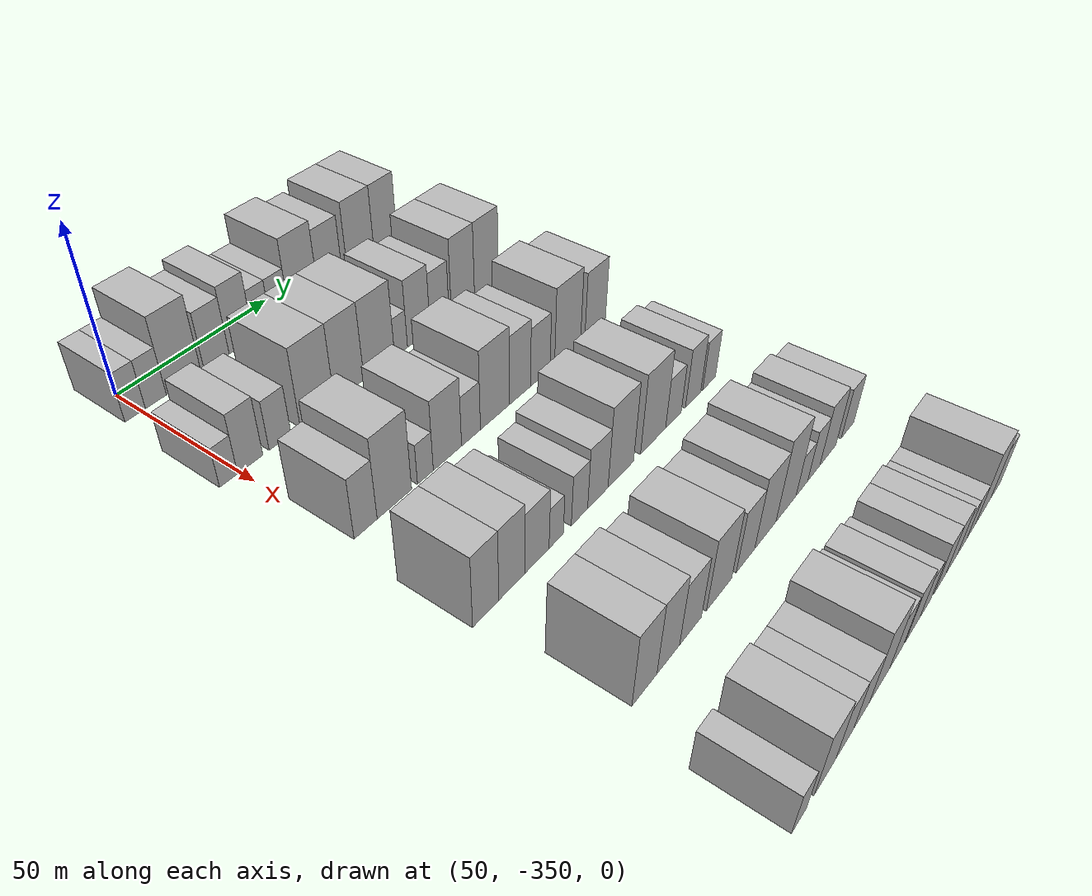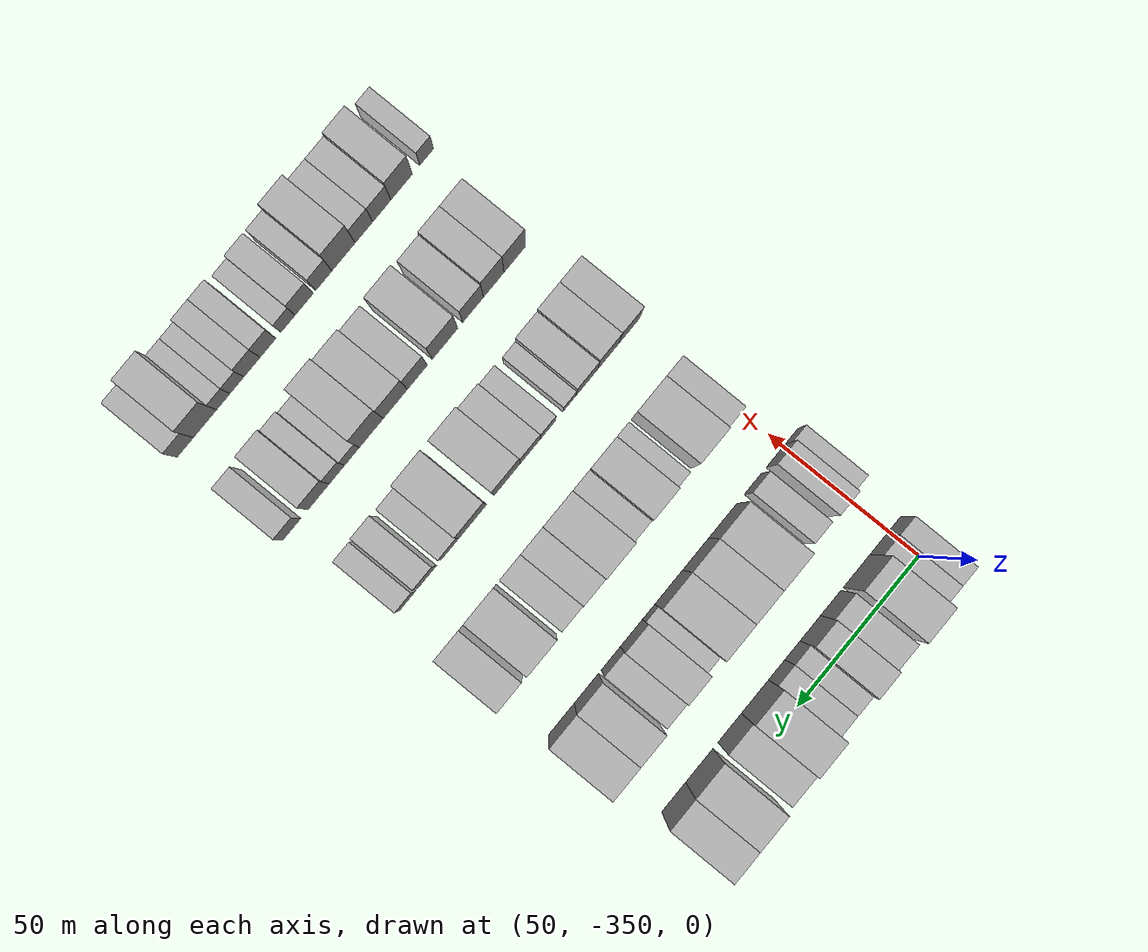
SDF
<sdf version="1.6">
 <world name="default">
  <model name="building_25">
   <static>1</static>
   <pose>50.0000 -352.0526 0 0.000000 0.000000 0.000000</pose>
   <link name="link">
    <pose>0 0 7.50 0 0 0</pose>
    <collision name="collision"><geometry><box><size>20.0000 6.1165 15.0000</size></box></geometry></collision>
    <visual name="visual">
     <cast_shadows>0</cast_shadows>
     <geometry><box><size>20.0000 6.1165 15.0000</size></box></geometry>
     <material>
      <script>
       <uri>model://HANNAS_wall/materials/scripts</uri>
       <uri>model://HANNAS_wall/materials/textures</uri>
       <name>vrc/HANNAS_wall</name>
      </script>
     </material>
    </visual>
   </link>
  </model>
  <model name="building_26">
   <static>1</static>
   <pose>50.0000 -345.7716 0 0.000000 0.000000 0.000000</pose>
   <link name="link">
    <pose>0 0 7.50 0 0 0</pose>
    <collision name="collision"><geometry><box><size>20.0000 6.4454 15.0000</size></box></geometry></collision>
    <visual name="visual">
     <cast_shadows>0</cast_shadows>
     <geometry><box><size>20.0000 6.4454 15.0000</size></box></geometry>
     <material>
      <script>
       <uri>model://HANNAS_wall/materials/scripts</uri>
       <uri>model://HANNAS_wall/materials/textures</uri>
       <name>vrc/HANNAS_wall</name>
      </script>
     </material>
    </visual>
   </link>
  </model>
  <model name="building_27">
   <static>1</static>
   <pose>50.0000 -337.0065 0 0.000000 0.000000 0.000000</pose>
   <link name="link">
    <pose>0 0 12.00 0 0 0</pose>
    <collision name="collision"><geometry><box><size>20.0000 11.0848 24.0000</size></box></geometry></collision>
    <visual name="visual">
     <cast_shadows>0</cast_shadows>
     <geometry><box><size>20.0000 11.0848 24.0000</size></box></geometry>
     <material>
      <script>
       <uri>model://HANNAS_wall/materials/scripts</uri>
       <uri>model://HANNAS_wall/materials/textures</uri>
       <name>vrc/HANNAS_wall</name>
      </script>
     </material>
    </visual>
   </link>
  </model>
  <model name="building_28">
   <static>1</static>
   <pose>50.0000 -326.2765 0 0.000000 0.000000 0.000000</pose>
   <link name="link">
    <pose>0 0 9.00 0 0 0</pose>
    <collision name="collision"><geometry><box><size>20.0000 8.3753 18.0000</size></box></geometry></collision>
    <visual name="visual">
     <cast_shadows>0</cast_shadows>
     <geometry><box><size>20.0000 8.3753 18.0000</size></box></geometry>
     <material>
      <script>
       <uri>model://HANNAS_wall/materials/scripts</uri>
       <uri>model://HANNAS_wall/materials/textures</uri>
       <name>vrc/HANNAS_wall</name>
      </script>
     </material>
    </visual>
   </link>
  </model>
  <model name="building_29">
   <static>1</static>
   <pose>50.0000 -317.8572 0 0.000000 0.000000 0.000000</pose>
   <link name="link">
    <pose>0 0 10.50 0 0 0</pose>
    <collision name="collision"><geometry><box><size>20.0000 8.4634 21.0000</size></box></geometry></collision>
    <visual name="visual">
     <cast_shadows>0</cast_shadows>
     <geometry><box><size>20.0000 8.4634 21.0000</size></box></geometry>
     <material>
      <script>
       <uri>model://HANNAS_wall/materials/scripts</uri>
       <uri>model://HANNAS_wall/materials/textures</uri>
       <name>vrc/HANNAS_wall</name>
      </script>
     </material>
    </visual>
   </link>
  </model>
  <model name="building_30">
   <static>1</static>
   <pose>50.0000 -310.4943 0 0.000000 0.000000 0.000000</pose>
   <link name="link">
    <pose>0 0 7.50 0 0 0</pose>
    <collision name="collision"><geometry><box><size>20.0000 6.2623 15.0000</size></box></geometry></collision>
    <visual name="visual">
     <cast_shadows>0</cast_shadows>
     <geometry><box><size>20.0000 6.2623 15.0000</size></box></geometry>
     <material>
      <script>
       <uri>model://HANNAS_wall/materials/scripts</uri>
       <uri>model://HANNAS_wall/materials/textures</uri>
       <name>vrc/HANNAS_wall</name>
      </script>
     </material>
    </visual>
   </link>
  </model>
  <model name="building_31">
   <static>1</static>
   <pose>50.0000 -304.0027 0 0.000000 0.000000 0.000000</pose>
   <link name="link">
    <pose>0 0 7.50 0 0 0</pose>
    <collision name="collision"><geometry><box><size>20.0000 6.7210 15.0000</size></box></geometry></collision>
    <visual name="visual">
     <cast_shadows>0</cast_shadows>
     <geometry><box><size>20.0000 6.7210 15.0000</size></box></geometry>
     <material>
      <script>
       <uri>model://HANNAS_wall/materials/scripts</uri>
       <uri>model://HANNAS_wall/materials/textures</uri>
       <name>vrc/HANNAS_wall</name>
      </script>
     </material>
    </visual>
   </link>
  </model>
  <model name="building_32">
   <static>1</static>
   <pose>50.0000 -295.0902 0 0.000000 0.000000 0.000000</pose>
   <link name="link">
    <pose>0 0 12.00 0 0 0</pose>
    <collision name="collision"><geometry><box><size>20.0000 11.1041 24.0000</size></box></geometry></collision>
    <visual name="visual">
     <cast_shadows>0</cast_shadows>
     <geometry><box><size>20.0000 11.1041 24.0000</size></box></geometry>
     <material>
      <script>
       <uri>model://HANNAS_wall/materials/scripts</uri>
       <uri>model://HANNAS_wall/materials/textures</uri>
       <name>vrc/HANNAS_wall</name>
      </script>
     </material>
    </visual>
   </link>
  </model>
  <model name="building_33">
   <static>1</static>
   <pose>50.0000 -284.7177 0 0.000000 0.000000 0.000000</pose>
   <link name="link">
    <pose>0 0 10.50 0 0 0</pose>
    <collision name="collision"><geometry><box><size>20.0000 9.6409 21.0000</size></box></geometry></collision>
    <visual name="visual">
     <cast_shadows>0</cast_shadows>
     <geometry><box><size>20.0000 9.6409 21.0000</size></box></geometry>
     <material>
      <script>
       <uri>model://HANNAS_wall/materials/scripts</uri>
       <uri>model://HANNAS_wall/materials/textures</uri>
       <name>vrc/HANNAS_wall</name>
      </script>
     </material>
    </visual>
   </link>
  </model>
  <model name="building_34">
   <static>1</static>
   <pose>50.0000 -272.3143 0 0.000000 0.000000 0.000000</pose>
   <link name="link">
    <pose>0 0 12.00 0 0 0</pose>
    <collision name="collision"><geometry><box><size>20.0000 11.1660 24.0000</size></box></geometry></collision>
    <visual name="visual">
     <cast_shadows>0</cast_shadows>
     <geometry><box><size>20.0000 11.1660 24.0000</size></box></geometry>
     <material>
      <script>
       <uri>model://HANNAS_wall/materials/scripts</uri>
       <uri>model://HANNAS_wall/materials/textures</uri>
       <name>vrc/HANNAS_wall</name>
      </script>
     </material>
    </visual>
   </link>
  </model>
  <model name="building_35">
   <static>1</static>
   <pose>50.0000 -261.8260 0 0.000000 0.000000 0.000000</pose>
   <link name="link">
    <pose>0 0 12.00 0 0 0</pose>
    <collision name="collision"><geometry><box><size>20.0000 9.8106 24.0000</size></box></geometry></collision>
    <visual name="visual">
     <cast_shadows>0</cast_shadows>
     <geometry><box><size>20.0000 9.8106 24.0000</size></box></geometry>
     <material>
      <script>
       <uri>model://HANNAS_wall/materials/scripts</uri>
       <uri>model://HANNAS_wall/materials/textures</uri>
       <name>vrc/HANNAS_wall</name>
      </script>
     </material>
    </visual>
   </link>
  </model>
  <model name="building_152">
   <static>1</static>
   <pose>85.0000 -353.3975 0 0.000000 0.000000 0.000000</pose>
   <link name="link">
    <pose>0 0 6.00 0 0 0</pose>
    <collision name="collision"><geometry><box><size>20.0000 5.4211 12.0000</size></box></geometry></collision>
    <visual name="visual">
     <cast_shadows>0</cast_shadows>
     <geometry><box><size>20.0000 5.4211 12.0000</size></box></geometry>
     <material>
      <script>
       <uri>model://HANNAS_wall/materials/scripts</uri>
       <uri>model://HANNAS_wall/materials/textures</uri>
       <name>vrc/HANNAS_wall</name>
      </script>
     </material>
    </visual>
   </link>
  </model>
  <model name="building_153">
   <static>1</static>
   <pose>85.0000 -346.8022 0 0.000000 0.000000 0.000000</pose>
   <link name="link">
    <pose>0 0 9.00 0 0 0</pose>
    <collision name="collision"><geometry><box><size>20.0000 7.7694 18.0000</size></box></geometry></collision>
    <visual name="visual">
     <cast_shadows>0</cast_shadows>
     <geometry><box><size>20.0000 7.7694 18.0000</size></box></geometry>
     <material>
      <script>
       <uri>model://HANNAS_wall/materials/scripts</uri>
       <uri>model://HANNAS_wall/materials/textures</uri>
       <name>vrc/HANNAS_wall</name>
      </script>
     </material>
    </visual>
   </link>
  </model>
  <model name="building_154">
   <static>1</static>
   <pose>85.0000 -337.3954 0 0.000000 0.000000 0.000000</pose>
   <link name="link">
    <pose>0 0 7.50 0 0 0</pose>
    <collision name="collision"><geometry><box><size>20.0000 7.0443 15.0000</size></box></geometry></collision>
    <visual name="visual">
     <cast_shadows>0</cast_shadows>
     <geometry><box><size>20.0000 7.0443 15.0000</size></box></geometry>
     <material>
      <script>
       <uri>model://HANNAS_wall/materials/scripts</uri>
       <uri>model://HANNAS_wall/materials/textures</uri>
       <name>vrc/HANNAS_wall</name>
      </script>
     </material>
    </visual>
   </link>
  </model>
  <model name="building_155">
   <static>1</static>
   <pose>85.0000 -325.0243 0 0.000000 0.000000 0.000000</pose>
   <link name="link">
    <pose>0 0 12.00 0 0 0</pose>
    <collision name="collision"><geometry><box><size>20.0000 11.6979 24.0000</size></box></geometry></collision>
    <visual name="visual">
     <cast_shadows>0</cast_shadows>
     <geometry><box><size>20.0000 11.6979 24.0000</size></box></geometry>
     <material>
      <script>
       <uri>model://HANNAS_wall/materials/scripts</uri>
       <uri>model://HANNAS_wall/materials/textures</uri>
       <name>vrc/HANNAS_wall</name>
      </script>
     </material>
    </visual>
   </link>
  </model>
  <model name="building_156">
   <static>1</static>
   <pose>85.0000 -313.8927 0 0.000000 0.000000 0.000000</pose>
   <link name="link">
    <pose>0 0 12.00 0 0 0</pose>
    <collision name="collision"><geometry><box><size>20.0000 10.5653 24.0000</size></box></geometry></collision>
    <visual name="visual">
     <cast_shadows>0</cast_shadows>
     <geometry><box><size>20.0000 10.5653 24.0000</size></box></geometry>
     <material>
      <script>
       <uri>model://HANNAS_wall/materials/scripts</uri>
       <uri>model://HANNAS_wall/materials/textures</uri>
       <name>vrc/HANNAS_wall</name>
      </script>
     </material>
    </visual>
   </link>
  </model>
  <model name="building_157">
   <static>1</static>
   <pose>85.0000 -302.8517 0 0.000000 0.000000 0.000000</pose>
   <link name="link">
    <pose>0 0 12.00 0 0 0</pose>
    <collision name="collision"><geometry><box><size>20.0000 11.5167 24.0000</size></box></geometry></collision>
    <visual name="visual">
     <cast_shadows>0</cast_shadows>
     <geometry><box><size>20.0000 11.5167 24.0000</size></box></geometry>
     <material>
      <script>
       <uri>model://HANNAS_wall/materials/scripts</uri>
       <uri>model://HANNAS_wall/materials/textures</uri>
       <name>vrc/HANNAS_wall</name>
      </script>
     </material>
    </visual>
   </link>
  </model>
  <model name="building_158">
   <static>1</static>
   <pose>85.0000 -294.6057 0 0.000000 0.000000 0.000000</pose>
   <link name="link">
    <pose>0 0 6.00 0 0 0</pose>
    <collision name="collision"><geometry><box><size>20.0000 4.9754 12.0000</size></box></geometry></collision>
    <visual name="visual">
     <cast_shadows>0</cast_shadows>
     <geometry><box><size>20.0000 4.9754 12.0000</size></box></geometry>
     <material>
      <script>
       <uri>model://HANNAS_wall/materials/scripts</uri>
       <uri>model://HANNAS_wall/materials/textures</uri>
       <name>vrc/HANNAS_wall</name>
      </script>
     </material>
    </visual>
   </link>
  </model>
  <model name="building_159">
   <static>1</static>
   <pose>85.0000 -287.5764 0 0.000000 0.000000 0.000000</pose>
   <link name="link">
    <pose>0 0 10.50 0 0 0</pose>
    <collision name="collision"><geometry><box><size>20.0000 9.0832 21.0000</size></box></geometry></collision>
    <visual name="visual">
     <cast_shadows>0</cast_shadows>
     <geometry><box><size>20.0000 9.0832 21.0000</size></box></geometry>
     <material>
      <script>
       <uri>model://HANNAS_wall/materials/scripts</uri>
       <uri>model://HANNAS_wall/materials/textures</uri>
       <name>vrc/HANNAS_wall</name>
      </script>
     </material>
    </visual>
   </link>
  </model>
  <model name="building_160">
   <static>1</static>
   <pose>85.0000 -279.1098 0 0.000000 0.000000 0.000000</pose>
   <link name="link">
    <pose>0 0 9.00 0 0 0</pose>
    <collision name="collision"><geometry><box><size>20.0000 7.8499 18.0000</size></box></geometry></collision>
    <visual name="visual">
     <cast_shadows>0</cast_shadows>
     <geometry><box><size>20.0000 7.8499 18.0000</size></box></geometry>
     <material>
      <script>
       <uri>model://HANNAS_wall/materials/scripts</uri>
       <uri>model://HANNAS_wall/materials/textures</uri>
       <name>vrc/HANNAS_wall</name>
      </script>
     </material>
    </visual>
   </link>
  </model>
  <model name="building_161">
   <static>1</static>
   <pose>85.0000 -269.1996 0 0.000000 0.000000 0.000000</pose>
   <link name="link">
    <pose>0 0 12.00 0 0 0</pose>
    <collision name="collision"><geometry><box><size>20.0000 9.9705 24.0000</size></box></geometry></collision>
    <visual name="visual">
     <cast_shadows>0</cast_shadows>
     <geometry><box><size>20.0000 9.9705 24.0000</size></box></geometry>
     <material>
      <script>
       <uri>model://HANNAS_wall/materials/scripts</uri>
       <uri>model://HANNAS_wall/materials/textures</uri>
       <name>vrc/HANNAS_wall</name>
      </script>
     </material>
    </visual>
   </link>
  </model>
  <model name="building_162">
   <static>1</static>
   <pose>85.0000 -258.9058 0 0.000000 0.000000 0.000000</pose>
   <link name="link">
    <pose>0 0 12.00 0 0 0</pose>
    <collision name="collision"><geometry><box><size>20.0000 10.6171 24.0000</size></box></geometry></collision>
    <visual name="visual">
     <cast_shadows>0</cast_shadows>
     <geometry><box><size>20.0000 10.6171 24.0000</size></box></geometry>
     <material>
      <script>
       <uri>model://HANNAS_wall/materials/scripts</uri>
       <uri>model://HANNAS_wall/materials/textures</uri>
       <name>vrc/HANNAS_wall</name>
      </script>
     </material>
    </visual>
   </link>
  </model>
  <model name="building_280">
   <static>1</static>
   <pose>120.0000 -345.4347 0 0.000000 0.000000 0.000000</pose>
   <link name="link">
    <pose>0 0 9.00 0 0 0</pose>
    <collision name="collision"><geometry><box><size>20.0000 7.3187 18.0000</size></box></geometry></collision>
    <visual name="visual">
     <cast_shadows>0</cast_shadows>
     <geometry><box><size>20.0000 7.3187 18.0000</size></box></geometry>
     <material>
      <script>
       <uri>model://HANNAS_wall/materials/scripts</uri>
       <uri>model://HANNAS_wall/materials/textures</uri>
       <name>vrc/HANNAS_wall</name>
      </script>
     </material>
    </visual>
   </link>
  </model>
  <model name="building_281">
   <static>1</static>
   <pose>120.0000 -336.0631 0 0.000000 0.000000 0.000000</pose>
   <link name="link">
    <pose>0 0 12.00 0 0 0</pose>
    <collision name="collision"><geometry><box><size>20.0000 11.4246 24.0000</size></box></geometry></collision>
    <visual name="visual">
     <cast_shadows>0</cast_shadows>
     <geometry><box><size>20.0000 11.4246 24.0000</size></box></geometry>
     <material>
      <script>
       <uri>model://HANNAS_wall/materials/scripts</uri>
       <uri>model://HANNAS_wall/materials/textures</uri>
       <name>vrc/HANNAS_wall</name>
      </script>
     </material>
    </visual>
   </link>
  </model>
  <model name="building_282">
   <static>1</static>
   <pose>120.0000 -325.5918 0 0.000000 0.000000 0.000000</pose>
   <link name="link">
    <pose>0 0 6.00 0 0 0</pose>
    <collision name="collision"><geometry><box><size>20.0000 5.5179 12.0000</size></box></geometry></collision>
    <visual name="visual">
     <cast_shadows>0</cast_shadows>
     <geometry><box><size>20.0000 5.5179 12.0000</size></box></geometry>
     <material>
      <script>
       <uri>model://HANNAS_wall/materials/scripts</uri>
       <uri>model://HANNAS_wall/materials/textures</uri>
       <name>vrc/HANNAS_wall</name>
      </script>
     </material>
    </visual>
   </link>
  </model>
  <model name="building_283">
   <static>1</static>
   <pose>120.0000 -317.7175 0 0.000000 0.000000 0.000000</pose>
   <link name="link">
    <pose>0 0 10.50 0 0 0</pose>
    <collision name="collision"><geometry><box><size>20.0000 10.2308 21.0000</size></box></geometry></collision>
    <visual name="visual">
     <cast_shadows>0</cast_shadows>
     <geometry><box><size>20.0000 10.2308 21.0000</size></box></geometry>
     <material>
      <script>
       <uri>model://HANNAS_wall/materials/scripts</uri>
       <uri>model://HANNAS_wall/materials/textures</uri>
       <name>vrc/HANNAS_wall</name>
      </script>
     </material>
    </visual>
   </link>
  </model>
  <model name="building_284">
   <static>1</static>
   <pose>120.0000 -309.0477 0 0.000000 0.000000 0.000000</pose>
   <link name="link">
    <pose>0 0 7.50 0 0 0</pose>
    <collision name="collision"><geometry><box><size>20.0000 7.1088 15.0000</size></box></geometry></collision>
    <visual name="visual">
     <cast_shadows>0</cast_shadows>
     <geometry><box><size>20.0000 7.1088 15.0000</size></box></geometry>
     <material>
      <script>
       <uri>model://HANNAS_wall/materials/scripts</uri>
       <uri>model://HANNAS_wall/materials/textures</uri>
       <name>vrc/HANNAS_wall</name>
      </script>
     </material>
    </visual>
   </link>
  </model>
  <model name="building_285">
   <static>1</static>
   <pose>120.0000 -299.7799 0 0.000000 0.000000 0.000000</pose>
   <link name="link">
    <pose>0 0 12.00 0 0 0</pose>
    <collision name="collision"><geometry><box><size>20.0000 11.4269 24.0000</size></box></geometry></collision>
    <visual name="visual">
     <cast_shadows>0</cast_shadows>
     <geometry><box><size>20.0000 11.4269 24.0000</size></box></geometry>
     <material>
      <script>
       <uri>model://HANNAS_wall/materials/scripts</uri>
       <uri>model://HANNAS_wall/materials/textures</uri>
       <name>vrc/HANNAS_wall</name>
      </script>
     </material>
    </visual>
   </link>
  </model>
  <model name="building_286">
   <static>1</static>
   <pose>120.0000 -289.7372 0 0.000000 0.000000 0.000000</pose>
   <link name="link">
    <pose>0 0 10.50 0 0 0</pose>
    <collision name="collision"><geometry><box><size>20.0000 8.6585 21.0000</size></box></geometry></collision>
    <visual name="visual">
     <cast_shadows>0</cast_shadows>
     <geometry><box><size>20.0000 8.6585 21.0000</size></box></geometry>
     <material>
      <script>
       <uri>model://HANNAS_wall/materials/scripts</uri>
       <uri>model://HANNAS_wall/materials/textures</uri>
       <name>vrc/HANNAS_wall</name>
      </script>
     </material>
    </visual>
   </link>
  </model>
  <model name="building_287">
   <static>1</static>
   <pose>120.0000 -281.2549 0 0.000000 0.000000 0.000000</pose>
   <link name="link">
    <pose>0 0 9.00 0 0 0</pose>
    <collision name="collision"><geometry><box><size>20.0000 8.3060 18.0000</size></box></geometry></collision>
    <visual name="visual">
     <cast_shadows>0</cast_shadows>
     <geometry><box><size>20.0000 8.3060 18.0000</size></box></geometry>
     <material>
      <script>
       <uri>model://HANNAS_wall/materials/scripts</uri>
       <uri>model://HANNAS_wall/materials/textures</uri>
       <name>vrc/HANNAS_wall</name>
      </script>
     </material>
    </visual>
   </link>
  </model>
  <model name="building_288">
   <static>1</static>
   <pose>120.0000 -269.2908 0 0.000000 0.000000 0.000000</pose>
   <link name="link">
    <pose>0 0 12.00 0 0 0</pose>
    <collision name="collision"><geometry><box><size>20.0000 11.6222 24.0000</size></box></geometry></collision>
    <visual name="visual">
     <cast_shadows>0</cast_shadows>
     <geometry><box><size>20.0000 11.6222 24.0000</size></box></geometry>
     <material>
      <script>
       <uri>model://HANNAS_wall/materials/scripts</uri>
       <uri>model://HANNAS_wall/materials/textures</uri>
       <name>vrc/HANNAS_wall</name>
      </script>
     </material>
    </visual>
   </link>
  </model>
  <model name="building_289">
   <static>1</static>
   <pose>120.0000 -256.6405 0 0.000000 0.000000 0.000000</pose>
   <link name="link">
    <pose>0 0 10.50 0 0 0</pose>
    <collision name="collision"><geometry><box><size>20.0000 9.6785 21.0000</size></box></geometry></collision>
    <visual name="visual">
     <cast_shadows>0</cast_shadows>
     <geometry><box><size>20.0000 9.6785 21.0000</size></box></geometry>
     <material>
      <script>
       <uri>model://HANNAS_wall/materials/scripts</uri>
       <uri>model://HANNAS_wall/materials/textures</uri>
       <name>vrc/HANNAS_wall</name>
      </script>
     </material>
    </visual>
   </link>
  </model>
  <model name="building_393">
   <static>1</static>
   <pose>155.0000 -347.6637 0 0.000000 0.000000 0.000000</pose>
   <link name="link">
    <pose>0 0 10.50 0 0 0</pose>
    <collision name="collision"><geometry><box><size>20.0000 8.4701 21.0000</size></box></geometry></collision>
    <visual name="visual">
     <cast_shadows>0</cast_shadows>
     <geometry><box><size>20.0000 8.4701 21.0000</size></box></geometry>
     <material>
      <script>
       <uri>model://HANNAS_wall/materials/scripts</uri>
       <uri>model://HANNAS_wall/materials/textures</uri>
       <name>vrc/HANNAS_wall</name>
      </script>
     </material>
    </visual>
   </link>
  </model>
  <model name="building_394">
   <static>1</static>
   <pose>155.0000 -339.0437 0 0.000000 0.000000 0.000000</pose>
   <link name="link">
    <pose>0 0 10.50 0 0 0</pose>
    <collision name="collision"><geometry><box><size>20.0000 8.7699 21.0000</size></box></geometry></collision>
    <visual name="visual">
     <cast_shadows>0</cast_shadows>
     <geometry><box><size>20.0000 8.7699 21.0000</size></box></geometry>
     <material>
      <script>
       <uri>model://HANNAS_wall/materials/scripts</uri>
       <uri>model://HANNAS_wall/materials/textures</uri>
       <name>vrc/HANNAS_wall</name>
      </script>
     </material>
    </visual>
   </link>
  </model>
  <model name="building_395">
   <static>1</static>
   <pose>155.0000 -330.3073 0 0.000000 0.000000 0.000000</pose>
   <link name="link">
    <pose>0 0 9.00 0 0 0</pose>
    <collision name="collision"><geometry><box><size>20.0000 8.7029 18.0000</size></box></geometry></collision>
    <visual name="visual">
     <cast_shadows>0</cast_shadows>
     <geometry><box><size>20.0000 8.7029 18.0000</size></box></geometry>
     <material>
      <script>
       <uri>model://HANNAS_wall/materials/scripts</uri>
       <uri>model://HANNAS_wall/materials/textures</uri>
       <name>vrc/HANNAS_wall</name>
      </script>
     </material>
    </visual>
   </link>
  </model>
  <model name="building_396">
   <static>1</static>
   <pose>155.0000 -323.3220 0 0.000000 0.000000 0.000000</pose>
   <link name="link">
    <pose>0 0 6.00 0 0 0</pose>
    <collision name="collision"><geometry><box><size>20.0000 5.2678 12.0000</size></box></geometry></collision>
    <visual name="visual">
     <cast_shadows>0</cast_shadows>
     <geometry><box><size>20.0000 5.2678 12.0000</size></box></geometry>
     <material>
      <script>
       <uri>model://HANNAS_wall/materials/scripts</uri>
       <uri>model://HANNAS_wall/materials/textures</uri>
       <name>vrc/HANNAS_wall</name>
      </script>
     </material>
    </visual>
   </link>
  </model>
  <model name="building_397">
   <static>1</static>
   <pose>155.0000 -314.5432 0 0.000000 0.000000 0.000000</pose>
   <link name="link">
    <pose>0 0 7.50 0 0 0</pose>
    <collision name="collision"><geometry><box><size>20.0000 6.2897 15.0000</size></box></geometry></collision>
    <visual name="visual">
     <cast_shadows>0</cast_shadows>
     <geometry><box><size>20.0000 6.2897 15.0000</size></box></geometry>
     <material>
      <script>
       <uri>model://HANNAS_wall/materials/scripts</uri>
       <uri>model://HANNAS_wall/materials/textures</uri>
       <name>vrc/HANNAS_wall</name>
      </script>
     </material>
    </visual>
   </link>
  </model>
  <model name="building_398">
   <static>1</static>
   <pose>155.0000 -307.3160 0 0.000000 0.000000 0.000000</pose>
   <link name="link">
    <pose>0 0 9.00 0 0 0</pose>
    <collision name="collision"><geometry><box><size>20.0000 8.1645 18.0000</size></box></geometry></collision>
    <visual name="visual">
     <cast_shadows>0</cast_shadows>
     <geometry><box><size>20.0000 8.1645 18.0000</size></box></geometry>
     <material>
      <script>
       <uri>model://HANNAS_wall/materials/scripts</uri>
       <uri>model://HANNAS_wall/materials/textures</uri>
       <name>vrc/HANNAS_wall</name>
      </script>
     </material>
    </visual>
   </link>
  </model>
  <model name="building_399">
   <static>1</static>
   <pose>155.0000 -297.8818 0 0.000000 0.000000 0.000000</pose>
   <link name="link">
    <pose>0 0 12.00 0 0 0</pose>
    <collision name="collision"><geometry><box><size>20.0000 10.7040 24.0000</size></box></geometry></collision>
    <visual name="visual">
     <cast_shadows>0</cast_shadows>
     <geometry><box><size>20.0000 10.7040 24.0000</size></box></geometry>
     <material>
      <script>
       <uri>model://HANNAS_wall/materials/scripts</uri>
       <uri>model://HANNAS_wall/materials/textures</uri>
       <name>vrc/HANNAS_wall</name>
      </script>
     </material>
    </visual>
   </link>
  </model>
  <model name="building_400">
   <static>1</static>
   <pose>155.0000 -283.9287 0 0.000000 0.000000 0.000000</pose>
   <link name="link">
    <pose>0 0 12.00 0 0 0</pose>
    <collision name="collision"><geometry><box><size>20.0000 11.2021 24.0000</size></box></geometry></collision>
    <visual name="visual">
     <cast_shadows>0</cast_shadows>
     <geometry><box><size>20.0000 11.2021 24.0000</size></box></geometry>
     <material>
      <script>
       <uri>model://HANNAS_wall/materials/scripts</uri>
       <uri>model://HANNAS_wall/materials/textures</uri>
       <name>vrc/HANNAS_wall</name>
      </script>
     </material>
    </visual>
   </link>
  </model>
  <model name="building_401">
   <static>1</static>
   <pose>155.0000 -274.6946 0 0.000000 0.000000 0.000000</pose>
   <link name="link">
    <pose>0 0 7.50 0 0 0</pose>
    <collision name="collision"><geometry><box><size>20.0000 7.2660 15.0000</size></box></geometry></collision>
    <visual name="visual">
     <cast_shadows>0</cast_shadows>
     <geometry><box><size>20.0000 7.2660 15.0000</size></box></geometry>
     <material>
      <script>
       <uri>model://HANNAS_wall/materials/scripts</uri>
       <uri>model://HANNAS_wall/materials/textures</uri>
       <name>vrc/HANNAS_wall</name>
      </script>
     </material>
    </visual>
   </link>
  </model>
  <model name="building_402">
   <static>1</static>
   <pose>155.0000 -265.3502 0 0.000000 0.000000 0.000000</pose>
   <link name="link">
    <pose>0 0 9.00 0 0 0</pose>
    <collision name="collision"><geometry><box><size>20.0000 7.4228 18.0000</size></box></geometry></collision>
    <visual name="visual">
     <cast_shadows>0</cast_shadows>
     <geometry><box><size>20.0000 7.4228 18.0000</size></box></geometry>
     <material>
      <script>
       <uri>model://HANNAS_wall/materials/scripts</uri>
       <uri>model://HANNAS_wall/materials/textures</uri>
       <name>vrc/HANNAS_wall</name>
      </script>
     </material>
    </visual>
   </link>
  </model>
  <model name="building_403">
   <static>1</static>
   <pose>155.0000 -257.4441 0 0.000000 0.000000 0.000000</pose>
   <link name="link">
    <pose>0 0 7.50 0 0 0</pose>
    <collision name="collision"><geometry><box><size>20.0000 6.3894 15.0000</size></box></geometry></collision>
    <visual name="visual">
     <cast_shadows>0</cast_shadows>
     <geometry><box><size>20.0000 6.3894 15.0000</size></box></geometry>
     <material>
      <script>
       <uri>model://HANNAS_wall/materials/scripts</uri>
       <uri>model://HANNAS_wall/materials/textures</uri>
       <name>vrc/HANNAS_wall</name>
      </script>
     </material>
    </visual>
   </link>
  </model>
  <model name="building_518">
   <static>1</static>
   <pose>190.0000 -343.5622 0 0.000000 0.000000 0.000000</pose>
   <link name="link">
    <pose>0 0 10.50 0 0 0</pose>
    <collision name="collision"><geometry><box><size>20.0000 8.8616 21.0000</size></box></geometry></collision>
    <visual name="visual">
     <cast_shadows>0</cast_shadows>
     <geometry><box><size>20.0000 8.8616 21.0000</size></box></geometry>
     <material>
      <script>
       <uri>model://HANNAS_wall/materials/scripts</uri>
       <uri>model://HANNAS_wall/materials/textures</uri>
       <name>vrc/HANNAS_wall</name>
      </script>
     </material>
    </visual>
   </link>
  </model>
  <model name="building_519">
   <static>1</static>
   <pose>190.0000 -334.9162 0 0.000000 0.000000 0.000000</pose>
   <link name="link">
    <pose>0 0 10.50 0 0 0</pose>
    <collision name="collision"><geometry><box><size>20.0000 8.4306 21.0000</size></box></geometry></collision>
    <visual name="visual">
     <cast_shadows>0</cast_shadows>
     <geometry><box><size>20.0000 8.4306 21.0000</size></box></geometry>
     <material>
      <script>
       <uri>model://HANNAS_wall/materials/scripts</uri>
       <uri>model://HANNAS_wall/materials/textures</uri>
       <name>vrc/HANNAS_wall</name>
      </script>
     </material>
    </visual>
   </link>
  </model>
  <model name="building_520">
   <static>1</static>
   <pose>190.0000 -326.4406 0 0.000000 0.000000 0.000000</pose>
   <link name="link">
    <pose>0 0 9.00 0 0 0</pose>
    <collision name="collision"><geometry><box><size>20.0000 8.5205 18.0000</size></box></geometry></collision>
    <visual name="visual">
     <cast_shadows>0</cast_shadows>
     <geometry><box><size>20.0000 8.5205 18.0000</size></box></geometry>
     <material>
      <script>
       <uri>model://HANNAS_wall/materials/scripts</uri>
       <uri>model://HANNAS_wall/materials/textures</uri>
       <name>vrc/HANNAS_wall</name>
      </script>
     </material>
    </visual>
   </link>
  </model>
  <model name="building_521">
   <static>1</static>
   <pose>190.0000 -314.9527 0 0.000000 0.000000 0.000000</pose>
   <link name="link">
    <pose>0 0 10.50 0 0 0</pose>
    <collision name="collision"><geometry><box><size>20.0000 10.4554 21.0000</size></box></geometry></collision>
    <visual name="visual">
     <cast_shadows>0</cast_shadows>
     <geometry><box><size>20.0000 10.4554 21.0000</size></box></geometry>
     <material>
      <script>
       <uri>model://HANNAS_wall/materials/scripts</uri>
       <uri>model://HANNAS_wall/materials/textures</uri>
       <name>vrc/HANNAS_wall</name>
      </script>
     </material>
    </visual>
   </link>
  </model>
  <model name="building_522">
   <static>1</static>
   <pose>190.0000 -303.6498 0 0.000000 0.000000 0.000000</pose>
   <link name="link">
    <pose>0 0 9.00 0 0 0</pose>
    <collision name="collision"><geometry><box><size>20.0000 8.1504 18.0000</size></box></geometry></collision>
    <visual name="visual">
     <cast_shadows>0</cast_shadows>
     <geometry><box><size>20.0000 8.1504 18.0000</size></box></geometry>
     <material>
      <script>
       <uri>model://HANNAS_wall/materials/scripts</uri>
       <uri>model://HANNAS_wall/materials/textures</uri>
       <name>vrc/HANNAS_wall</name>
      </script>
     </material>
    </visual>
   </link>
  </model>
  <model name="building_523">
   <static>1</static>
   <pose>190.0000 -294.6663 0 0.000000 0.000000 0.000000</pose>
   <link name="link">
    <pose>0 0 10.50 0 0 0</pose>
    <collision name="collision"><geometry><box><size>20.0000 9.8165 21.0000</size></box></geometry></collision>
    <visual name="visual">
     <cast_shadows>0</cast_shadows>
     <geometry><box><size>20.0000 9.8165 21.0000</size></box></geometry>
     <material>
      <script>
       <uri>model://HANNAS_wall/materials/scripts</uri>
       <uri>model://HANNAS_wall/materials/textures</uri>
       <name>vrc/HANNAS_wall</name>
      </script>
     </material>
    </visual>
   </link>
  </model>
  <model name="building_524">
   <static>1</static>
   <pose>190.0000 -284.8809 0 0.000000 0.000000 0.000000</pose>
   <link name="link">
    <pose>0 0 12.00 0 0 0</pose>
    <collision name="collision"><geometry><box><size>20.0000 9.7544 24.0000</size></box></geometry></collision>
    <visual name="visual">
     <cast_shadows>0</cast_shadows>
     <geometry><box><size>20.0000 9.7544 24.0000</size></box></geometry>
     <material>
      <script>
       <uri>model://HANNAS_wall/materials/scripts</uri>
       <uri>model://HANNAS_wall/materials/textures</uri>
       <name>vrc/HANNAS_wall</name>
      </script>
     </material>
    </visual>
   </link>
  </model>
  <model name="building_525">
   <static>1</static>
   <pose>190.0000 -277.0090 0 0.000000 0.000000 0.000000</pose>
   <link name="link">
    <pose>0 0 6.00 0 0 0</pose>
    <collision name="collision"><geometry><box><size>20.0000 5.9895 12.0000</size></box></geometry></collision>
    <visual name="visual">
     <cast_shadows>0</cast_shadows>
     <geometry><box><size>20.0000 5.9895 12.0000</size></box></geometry>
     <material>
      <script>
       <uri>model://HANNAS_wall/materials/scripts</uri>
       <uri>model://HANNAS_wall/materials/textures</uri>
       <name>vrc/HANNAS_wall</name>
      </script>
     </material>
    </visual>
   </link>
  </model>
  <model name="building_526">
   <static>1</static>
   <pose>190.0000 -270.9093 0 0.000000 0.000000 0.000000</pose>
   <link name="link">
    <pose>0 0 7.50 0 0 0</pose>
    <collision name="collision"><geometry><box><size>20.0000 6.2099 15.0000</size></box></geometry></collision>
    <visual name="visual">
     <cast_shadows>0</cast_shadows>
     <geometry><box><size>20.0000 6.2099 15.0000</size></box></geometry>
     <material>
      <script>
       <uri>model://HANNAS_wall/materials/scripts</uri>
       <uri>model://HANNAS_wall/materials/textures</uri>
       <name>vrc/HANNAS_wall</name>
      </script>
     </material>
    </visual>
   </link>
  </model>
  <model name="building_527">
   <static>1</static>
   <pose>190.0000 -263.4912 0 0.000000 0.000000 0.000000</pose>
   <link name="link">
    <pose>0 0 9.00 0 0 0</pose>
    <collision name="collision"><geometry><box><size>20.0000 8.6263 18.0000</size></box></geometry></collision>
    <visual name="visual">
     <cast_shadows>0</cast_shadows>
     <geometry><box><size>20.0000 8.6263 18.0000</size></box></geometry>
     <material>
      <script>
       <uri>model://HANNAS_wall/materials/scripts</uri>
       <uri>model://HANNAS_wall/materials/textures</uri>
       <name>vrc/HANNAS_wall</name>
      </script>
     </material>
    </visual>
   </link>
  </model>
  <model name="building_528">
   <static>1</static>
   <pose>190.0000 -252.6493 0 0.000000 0.000000 0.000000</pose>
   <link name="link">
    <pose>0 0 7.50 0 0 0</pose>
    <collision name="collision"><geometry><box><size>20.0000 7.0576 15.0000</size></box></geometry></collision>
    <visual name="visual">
     <cast_shadows>0</cast_shadows>
     <geometry><box><size>20.0000 7.0576 15.0000</size></box></geometry>
     <material>
      <script>
       <uri>model://HANNAS_wall/materials/scripts</uri>
       <uri>model://HANNAS_wall/materials/textures</uri>
       <name>vrc/HANNAS_wall</name>
      </script>
     </material>
    </visual>
   </link>
  </model>
  <model name="building_643">
   <static>1</static>
   <pose>225.0000 -349.8130 0 0.000000 0.000000 0.000000</pose>
   <link name="link">
    <pose>0 0 6.00 0 0 0</pose>
    <collision name="collision"><geometry><box><size>20.0000 5.6705 12.0000</size></box></geometry></collision>
    <visual name="visual">
     <cast_shadows>0</cast_shadows>
     <geometry><box><size>20.0000 5.6705 12.0000</size></box></geometry>
     <material>
      <script>
       <uri>model://HANNAS_wall/materials/scripts</uri>
       <uri>model://HANNAS_wall/materials/textures</uri>
       <name>vrc/HANNAS_wall</name>
      </script>
     </material>
    </visual>
   </link>
  </model>
  <model name="building_644">
   <static>1</static>
   <pose>225.0000 -339.5675 0 0.000000 0.000000 0.000000</pose>
   <link name="link">
    <pose>0 0 9.00 0 0 0</pose>
    <collision name="collision"><geometry><box><size>20.0000 8.8204 18.0000</size></box></geometry></collision>
    <visual name="visual">
     <cast_shadows>0</cast_shadows>
     <geometry><box><size>20.0000 8.8204 18.0000</size></box></geometry>
     <material>
      <script>
       <uri>model://HANNAS_wall/materials/scripts</uri>
       <uri>model://HANNAS_wall/materials/textures</uri>
       <name>vrc/HANNAS_wall</name>
      </script>
     </material>
    </visual>
   </link>
  </model>
  <model name="building_645">
   <static>1</static>
   <pose>225.0000 -331.4271 0 0.000000 0.000000 0.000000</pose>
   <link name="link">
    <pose>0 0 7.50 0 0 0</pose>
    <collision name="collision"><geometry><box><size>20.0000 7.4605 15.0000</size></box></geometry></collision>
    <visual name="visual">
     <cast_shadows>0</cast_shadows>
     <geometry><box><size>20.0000 7.4605 15.0000</size></box></geometry>
     <material>
      <script>
       <uri>model://HANNAS_wall/materials/scripts</uri>
       <uri>model://HANNAS_wall/materials/textures</uri>
       <name>vrc/HANNAS_wall</name>
      </script>
     </material>
    </visual>
   </link>
  </model>
  <model name="building_646">
   <static>1</static>
   <pose>225.0000 -324.1011 0 0.000000 0.000000 0.000000</pose>
   <link name="link">
    <pose>0 0 7.50 0 0 0</pose>
    <collision name="collision"><geometry><box><size>20.0000 7.1915 15.0000</size></box></geometry></collision>
    <visual name="visual">
     <cast_shadows>0</cast_shadows>
     <geometry><box><size>20.0000 7.1915 15.0000</size></box></geometry>
     <material>
      <script>
       <uri>model://HANNAS_wall/materials/scripts</uri>
       <uri>model://HANNAS_wall/materials/textures</uri>
       <name>vrc/HANNAS_wall</name>
      </script>
     </material>
    </visual>
   </link>
  </model>
  <model name="building_647">
   <static>1</static>
   <pose>225.0000 -315.7615 0 0.000000 0.000000 0.000000</pose>
   <link name="link">
    <pose>0 0 10.50 0 0 0</pose>
    <collision name="collision"><geometry><box><size>20.0000 9.4875 21.0000</size></box></geometry></collision>
    <visual name="visual">
     <cast_shadows>0</cast_shadows>
     <geometry><box><size>20.0000 9.4875 21.0000</size></box></geometry>
     <material>
      <script>
       <uri>model://HANNAS_wall/materials/scripts</uri>
       <uri>model://HANNAS_wall/materials/textures</uri>
       <name>vrc/HANNAS_wall</name>
      </script>
     </material>
    </visual>
   </link>
  </model>
  <model name="building_648">
   <static>1</static>
   <pose>225.0000 -307.6974 0 0.000000 0.000000 0.000000</pose>
   <link name="link">
    <pose>0 0 7.50 0 0 0</pose>
    <collision name="collision"><geometry><box><size>20.0000 6.6408 15.0000</size></box></geometry></collision>
    <visual name="visual">
     <cast_shadows>0</cast_shadows>
     <geometry><box><size>20.0000 6.6408 15.0000</size></box></geometry>
     <material>
      <script>
       <uri>model://HANNAS_wall/materials/scripts</uri>
       <uri>model://HANNAS_wall/materials/textures</uri>
       <name>vrc/HANNAS_wall</name>
      </script>
     </material>
    </visual>
   </link>
  </model>
  <model name="building_649">
   <static>1</static>
   <pose>225.0000 -299.6590 0 0.000000 0.000000 0.000000</pose>
   <link name="link">
    <pose>0 0 7.50 0 0 0</pose>
    <collision name="collision"><geometry><box><size>20.0000 7.4358 15.0000</size></box></geometry></collision>
    <visual name="visual">
     <cast_shadows>0</cast_shadows>
     <geometry><box><size>20.0000 7.4358 15.0000</size></box></geometry>
     <material>
      <script>
       <uri>model://HANNAS_wall/materials/scripts</uri>
       <uri>model://HANNAS_wall/materials/textures</uri>
       <name>vrc/HANNAS_wall</name>
      </script>
     </material>
    </visual>
   </link>
  </model>
  <model name="building_650">
   <static>1</static>
   <pose>225.0000 -293.0526 0 0.000000 0.000000 0.000000</pose>
   <link name="link">
    <pose>0 0 6.00 0 0 0</pose>
    <collision name="collision"><geometry><box><size>20.0000 5.7770 12.0000</size></box></geometry></collision>
    <visual name="visual">
     <cast_shadows>0</cast_shadows>
     <geometry><box><size>20.0000 5.7770 12.0000</size></box></geometry>
     <material>
      <script>
       <uri>model://HANNAS_wall/materials/scripts</uri>
       <uri>model://HANNAS_wall/materials/textures</uri>
       <name>vrc/HANNAS_wall</name>
      </script>
     </material>
    </visual>
   </link>
  </model>
  <model name="building_651">
   <static>1</static>
   <pose>225.0000 -284.9538 0 0.000000 0.000000 0.000000</pose>
   <link name="link">
    <pose>0 0 7.50 0 0 0</pose>
    <collision name="collision"><geometry><box><size>20.0000 6.4207 15.0000</size></box></geometry></collision>
    <visual name="visual">
     <cast_shadows>0</cast_shadows>
     <geometry><box><size>20.0000 6.4207 15.0000</size></box></geometry>
     <material>
      <script>
       <uri>model://HANNAS_wall/materials/scripts</uri>
       <uri>model://HANNAS_wall/materials/textures</uri>
       <name>vrc/HANNAS_wall</name>
      </script>
     </material>
    </visual>
   </link>
  </model>
  <model name="building_652">
   <static>1</static>
   <pose>225.0000 -278.4290 0 0.000000 0.000000 0.000000</pose>
   <link name="link">
    <pose>0 0 7.50 0 0 0</pose>
    <collision name="collision"><geometry><box><size>20.0000 6.6289 15.0000</size></box></geometry></collision>
    <visual name="visual">
     <cast_shadows>0</cast_shadows>
     <geometry><box><size>20.0000 6.6289 15.0000</size></box></geometry>
     <material>
      <script>
       <uri>model://HANNAS_wall/materials/scripts</uri>
       <uri>model://HANNAS_wall/materials/textures</uri>
       <name>vrc/HANNAS_wall</name>
      </script>
     </material>
    </visual>
   </link>
  </model>
  <model name="building_653">
   <static>1</static>
   <pose>225.0000 -272.3152 0 0.000000 0.000000 0.000000</pose>
   <link name="link">
    <pose>0 0 6.00 0 0 0</pose>
    <collision name="collision"><geometry><box><size>20.0000 5.5989 12.0000</size></box></geometry></collision>
    <visual name="visual">
     <cast_shadows>0</cast_shadows>
     <geometry><box><size>20.0000 5.5989 12.0000</size></box></geometry>
     <material>
      <script>
       <uri>model://HANNAS_wall/materials/scripts</uri>
       <uri>model://HANNAS_wall/materials/textures</uri>
       <name>vrc/HANNAS_wall</name>
      </script>
     </material>
    </visual>
   </link>
  </model>
  <model name="building_654">
   <static>1</static>
   <pose>225.0000 -266.7706 0 0.000000 0.000000 0.000000</pose>
   <link name="link">
    <pose>0 0 6.00 0 0 0</pose>
    <collision name="collision"><geometry><box><size>20.0000 5.4903 12.0000</size></box></geometry></collision>
    <visual name="visual">
     <cast_shadows>0</cast_shadows>
     <geometry><box><size>20.0000 5.4903 12.0000</size></box></geometry>
     <material>
      <script>
       <uri>model://HANNAS_wall/materials/scripts</uri>
       <uri>model://HANNAS_wall/materials/textures</uri>
       <name>vrc/HANNAS_wall</name>
      </script>
     </material>
    </visual>
   </link>
  </model>
  <model name="building_655">
   <static>1</static>
   <pose>225.0000 -259.3521 0 0.000000 0.000000 0.000000</pose>
   <link name="link">
    <pose>0 0 10.50 0 0 0</pose>
    <collision name="collision"><geometry><box><size>20.0000 9.3465 21.0000</size></box></geometry></collision>
    <visual name="visual">
     <cast_shadows>0</cast_shadows>
     <geometry><box><size>20.0000 9.3465 21.0000</size></box></geometry>
     <material>
      <script>
       <uri>model://HANNAS_wall/materials/scripts</uri>
       <uri>model://HANNAS_wall/materials/textures</uri>
       <name>vrc/HANNAS_wall</name>
      </script>
     </material>
    </visual>
   </link>
  </model>
  <model name="building_656">
   <static>1</static>
   <pose>225.0000 -251.3752 0 0.000000 0.000000 0.000000</pose>
   <link name="link">
    <pose>0 0 7.50 0 0 0</pose>
    <collision name="collision"><geometry><box><size>20.0000 6.6074 15.0000</size></box></geometry></collision>
    <visual name="visual">
     <cast_shadows>0</cast_shadows>
     <geometry><box><size>20.0000 6.6074 15.0000</size></box></geometry>
     <material>
      <script>
       <uri>model://HANNAS_wall/materials/scripts</uri>
       <uri>model://HANNAS_wall/materials/textures</uri>
       <name>vrc/HANNAS_wall</name>
      </script>
     </material>
    </visual>
   </link>
  </model>
 </world>
</sdf>
